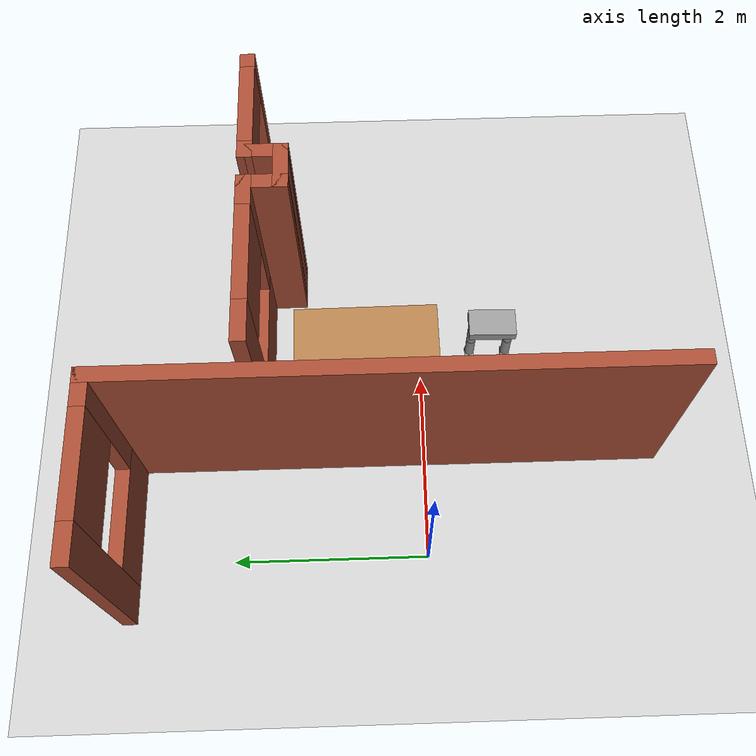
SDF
<sdf version="1.6">
 <world name="default">
  <model name="ground_plane">
   <static>1</static>
   <link name="link">
    <collision name="collision">
     <geometry><plane><normal>0 0 1</normal><size>100 100</size></plane></geometry>
     <surface><friction><ode><mu>100</mu><mu2>50</mu2></ode></friction></surface>
    </collision>
    <visual name="visual">
     <cast_shadows>0</cast_shadows>
     <geometry><plane><normal>0 0 1</normal><size>100 100</size></plane></geometry>
     <material>
      <script><uri>file://media/materials/scripts/gazebo.material</uri><name>Gazebo/Grey</name></script>
     </material>
    </visual>
   </link>
  </model>
  <model name="table_5">
   <static>1</static>
   <link name="link">
    <collision name="surface">
     <pose>0 0 1 0 -0 0</pose>
     <geometry><box><size>1.5 0.8 0.03</size></box></geometry>
     <surface><friction><ode><mu>0.6</mu><mu2>0.6</mu2></ode></friction></surface>
    </collision>
    <visual name="visual1">
     <pose>0 0 1 0 -0 0</pose>
     <geometry><box><size>1.5 0.8 0.03</size></box></geometry>
     <material>
      <script><uri>file://media/materials/scripts/gazebo.material</uri><name>Gazebo/Wood</name></script>
     </material>
    </visual>
    <collision name="front_left_leg">
     <pose>0.68 0.38 0.5 0 -0 0</pose>
     <geometry><cylinder><radius>0.02</radius><length>1</length></cylinder></geometry>
    </collision>
    <visual name="front_left_leg">
     <pose>0.68 0.38 0.5 0 -0 0</pose>
     <geometry><cylinder><radius>0.02</radius><length>1</length></cylinder></geometry>
     <material>
      <script><uri>file://media/materials/scripts/gazebo.material</uri><name>Gazebo/Grey</name></script>
     </material>
    </visual>
    <collision name="front_right_leg">
     <pose>0.68 -0.38 0.5 0 -0 0</pose>
     <geometry><cylinder><radius>0.02</radius><length>1</length></cylinder></geometry>
    </collision>
    <visual name="front_right_leg">
     <pose>0.68 -0.38 0.5 0 -0 0</pose>
     <geometry><cylinder><radius>0.02</radius><length>1</length></cylinder></geometry>
     <material>
      <script><uri>file://media/materials/scripts/gazebo.material</uri><name>Gazebo/Grey</name></script>
     </material>
    </visual>
    <collision name="back_right_leg">
     <pose>-0.68 -0.38 0.5 0 -0 0</pose>
     <geometry><cylinder><radius>0.02</radius><length>1</length></cylinder></geometry>
    </collision>
    <visual name="back_right_leg">
     <pose>-0.68 -0.38 0.5 0 -0 0</pose>
     <geometry><cylinder><radius>0.02</radius><length>1</length></cylinder></geometry>
     <material>
      <script><uri>file://media/materials/scripts/gazebo.material</uri><name>Gazebo/Grey</name></script>
     </material>
    </visual>
    <collision name="back_left_leg">
     <pose>-0.68 0.38 0.5 0 -0 0</pose>
     <geometry><cylinder><radius>0.02</radius><length>1</length></cylinder></geometry>
    </collision>
    <visual name="back_left_leg">
     <pose>-0.68 0.38 0.5 0 -0 0</pose>
     <geometry><cylinder><radius>0.02</radius><length>1</length></cylinder></geometry>
     <material>
      <script><uri>file://media/materials/scripts/gazebo.material</uri><name>Gazebo/Grey</name></script>
     </material>
    </visual>
   </link>
   <pose>2.01572 0.578498 0 0 0 -1.56109</pose>
  </model>
  <model name="Humanoid_0">
   <link name="link_0">
    <pose>0.336877 -1.8722 0.949715 -0 -0 -0</pose>
    <inertial>
     <mass>1</mass>
     <inertia>
      <ixx>0.166667</ixx>
      <ixy>0</ixy>
      <ixz>0</ixz>
      <iyy>0.166667</iyy>
      <iyz>0</iyz>
      <izz>0.166667</izz>
     </inertia>
    </inertial>
    <visual name="visual">
     <geometry><box><size>0.3 0.5 0.12</size></box></geometry>
     <material>
      <lighting>1</lighting>
      <script><uri>file://media/materials/scripts/gazebo.material</uri><name>Gazebo/Grey</name></script>
      <shader type="pixel"><normal_map>__default__</normal_map></shader>
      <ambient>0.3 0.3 0.3 1</ambient>
      <diffuse>0.7 0.7 0.7 1</diffuse>
      <specular>0.01 0.01 0.01 1</specular>
      <emissive>0 0 0 1</emissive>
     </material>
    </visual>
    <collision name="collision">
     <geometry><box><size>0.3 0.5 0.1</size></box></geometry>
     <surface>
      <friction>
       <ode><mu>1</mu><mu2>1</mu2><fdir1>0 0 0</fdir1><slip1>0</slip1><slip2>0</slip2></ode>
       <torsional>
        <coefficient>1</coefficient>
        <patch_radius>0</patch_radius>
        <surface_radius>0</surface_radius>
        <use_patch_radius>1</use_patch_radius>
        <ode><slip>0</slip></ode>
       </torsional>
      </friction>
      <bounce><restitution_coefficient>0</restitution_coefficient><threshold>1e+06</threshold></bounce>
      <contact>
       <collide_without_contact>0</collide_without_contact>
       <collide_without_contact_bitmask>1</collide_without_contact_bitmask>
       <collide_bitmask>1</collide_bitmask>
       <ode>
        <soft_cfm>0</soft_cfm>
        <soft_erp>0.2</soft_erp>
        <kp>1e+13</kp>
        <kd>1</kd>
        <max_vel>0.01</max_vel>
        <min_depth>0</min_depth>
       </ode>
       <bullet>
        <split_impulse>1</split_impulse>
        <split_impulse_penetration_threshold>-0.01</split_impulse_penetration_threshold>
        <soft_cfm>0</soft_cfm>
        <soft_erp>0.2</soft_erp>
        <kp>1e+13</kp>
        <kd>1</kd>
       </bullet>
      </contact>
     </surface>
    </collision>
   </link>
   <link name="link_1">
    <pose>0.33738 -2.07145 0.439715 -0 -0 -0</pose>
    <inertial>
     <mass>1</mass>
     <inertia><ixx>0.145833</ixx><ixy>0</ixy><ixz>0</ixz><iyy>0.145833</iyy><iyz>0</iyz><izz>0.125</izz></inertia>
    </inertial>
    <visual name="visual">
     <geometry><cylinder><radius>0.05</radius><length>0.3</length></cylinder></geometry>
     <material>
      <lighting>1</lighting>
      <script><uri>file://media/materials/scripts/gazebo.material</uri><name>Gazebo/Grey</name></script>
      <shader type="pixel"><normal_map>__default__</normal_map></shader>
      <ambient>0.3 0.3 0.3 1</ambient>
      <diffuse>0.7 0.7 0.7 1</diffuse>
      <specular>0.01 0.01 0.01 1</specular>
      <emissive>0 0 0 1</emissive>
     </material>
    </visual>
    <collision name="collision">
     <geometry><cylinder><radius>0.05</radius><length>0.3</length></cylinder></geometry>
     <surface>
      <friction>
       <ode><mu>1</mu><mu2>1</mu2><fdir1>0 0 0</fdir1><slip1>0</slip1><slip2>0</slip2></ode>
       <torsional>
        <coefficient>1</coefficient>
        <patch_radius>0</patch_radius>
        <surface_radius>0</surface_radius>
        <use_patch_radius>1</use_patch_radius>
        <ode><slip>0</slip></ode>
       </torsional>
      </friction>
      <bounce><restitution_coefficient>0</restitution_coefficient><threshold>1e+06</threshold></bounce>
      <contact>
       <collide_without_contact>0</collide_without_contact>
       <collide_without_contact_bitmask>1</collide_without_contact_bitmask>
       <collide_bitmask>1</collide_bitmask>
       <ode>
        <soft_cfm>0</soft_cfm>
        <soft_erp>0.2</soft_erp>
        <kp>1e+13</kp>
        <kd>1</kd>
        <max_vel>0.01</max_vel>
        <min_depth>0</min_depth>
       </ode>
       <bullet>
        <split_impulse>1</split_impulse>
        <split_impulse_penetration_threshold>-0.01</split_impulse_penetration_threshold>
        <soft_cfm>0</soft_cfm>
        <soft_erp>0.2</soft_erp>
        <kp>1e+13</kp>
        <kd>1</kd>
       </bullet>
      </contact>
     </surface>
    </collision>
   </link>
   <link name="link_1_clone">
    <pose>0.336877 -2.0722 0.739716 -0 -0 -0</pose>
    <inertial>
     <mass>1</mass>
     <inertia><ixx>0.145833</ixx><ixy>0</ixy><ixz>0</ixz><iyy>0.145833</iyy><iyz>0</iyz><izz>0.125</izz></inertia>
    </inertial>
    <visual name="visual">
     <geometry><cylinder><radius>0.05</radius><length>0.3</length></cylinder></geometry>
     <material>
      <lighting>1</lighting>
      <script><uri>file://media/materials/scripts/gazebo.material</uri><name>Gazebo/Grey</name></script>
      <shader type="pixel"><normal_map>__default__</normal_map></shader>
      <ambient>0.3 0.3 0.3 1</ambient>
      <diffuse>0.7 0.7 0.7 1</diffuse>
      <specular>0.01 0.01 0.01 1</specular>
      <emissive>0 0 0 1</emissive>
     </material>
    </visual>
    <collision name="collision">
     <geometry><cylinder><radius>0.05</radius><length>0.3</length></cylinder></geometry>
     <surface>
      <friction>
       <ode><mu>1</mu><mu2>1</mu2><fdir1>0 0 0</fdir1><slip1>0</slip1><slip2>0</slip2></ode>
       <torsional>
        <coefficient>1</coefficient>
        <patch_radius>0</patch_radius>
        <surface_radius>0</surface_radius>
        <use_patch_radius>1</use_patch_radius>
        <ode><slip>0</slip></ode>
       </torsional>
      </friction>
      <bounce><restitution_coefficient>0</restitution_coefficient><threshold>1e+06</threshold></bounce>
      <contact>
       <collide_without_contact>0</collide_without_contact>
       <collide_without_contact_bitmask>1</collide_without_contact_bitmask>
       <collide_bitmask>1</collide_bitmask>
       <ode>
        <soft_cfm>0</soft_cfm>
        <soft_erp>0.2</soft_erp>
        <kp>1e+13</kp>
        <kd>1</kd>
        <max_vel>0.01</max_vel>
        <min_depth>0</min_depth>
       </ode>
       <bullet>
        <split_impulse>1</split_impulse>
        <split_impulse_penetration_threshold>-0.01</split_impulse_penetration_threshold>
        <soft_cfm>0</soft_cfm>
        <soft_erp>0.2</soft_erp>
        <kp>1e+13</kp>
        <kd>1</kd>
       </bullet>
      </contact>
     </surface>
    </collision>
   </link>
   <link name="link_1_clone_0">
    <pose>0.336877 -1.6722 0.739716 -0 -0 -0</pose>
    <inertial>
     <mass>1</mass>
     <inertia><ixx>0.145833</ixx><ixy>0</ixy><ixz>0</ixz><iyy>0.145833</iyy><iyz>0</iyz><izz>0.125</izz></inertia>
    </inertial>
    <visual name="visual">
     <geometry><cylinder><radius>0.05</radius><length>0.3</length></cylinder></geometry>
     <material>
      <lighting>1</lighting>
      <script><uri>file://media/materials/scripts/gazebo.material</uri><name>Gazebo/Grey</name></script>
      <shader type="pixel"><normal_map>__default__</normal_map></shader>
      <ambient>0.3 0.3 0.3 1</ambient>
      <diffuse>0.7 0.7 0.7 1</diffuse>
      <specular>0.01 0.01 0.01 1</specular>
      <emissive>0 0 0 1</emissive>
     </material>
    </visual>
    <collision name="collision">
     <geometry><cylinder><radius>0.05</radius><length>0.3</length></cylinder></geometry>
     <surface>
      <friction>
       <ode><mu>1</mu><mu2>1</mu2><fdir1>0 0 0</fdir1><slip1>0</slip1><slip2>0</slip2></ode>
       <torsional>
        <coefficient>1</coefficient>
        <patch_radius>0</patch_radius>
        <surface_radius>0</surface_radius>
        <use_patch_radius>1</use_patch_radius>
        <ode><slip>0</slip></ode>
       </torsional>
      </friction>
      <bounce><restitution_coefficient>0</restitution_coefficient><threshold>1e+06</threshold></bounce>
      <contact>
       <collide_without_contact>0</collide_without_contact>
       <collide_without_contact_bitmask>1</collide_without_contact_bitmask>
       <collide_bitmask>1</collide_bitmask>
       <ode>
        <soft_cfm>0</soft_cfm>
        <soft_erp>0.2</soft_erp>
        <kp>1e+13</kp>
        <kd>1</kd>
        <max_vel>0.01</max_vel>
        <min_depth>0</min_depth>
       </ode>
       <bullet>
        <split_impulse>1</split_impulse>
        <split_impulse_penetration_threshold>-0.01</split_impulse_penetration_threshold>
        <soft_cfm>0</soft_cfm>
        <soft_erp>0.2</soft_erp>
        <kp>1e+13</kp>
        <kd>1</kd>
       </bullet>
      </contact>
     </surface>
    </collision>
   </link>
   <link name="link_1_clone_1">
    <pose>0.336877 -1.6722 0.439715 -0 -0 -0</pose>
    <inertial>
     <mass>1</mass>
     <inertia><ixx>0.145833</ixx><ixy>0</ixy><ixz>0</ixz><iyy>0.145833</iyy><iyz>0</iyz><izz>0.125</izz></inertia>
    </inertial>
    <visual name="visual">
     <geometry><cylinder><radius>0.05</radius><length>0.3</length></cylinder></geometry>
     <material>
      <lighting>1</lighting>
      <script><uri>file://media/materials/scripts/gazebo.material</uri><name>Gazebo/Grey</name></script>
      <shader type="pixel"><normal_map>__default__</normal_map></shader>
      <ambient>0.3 0.3 0.3 1</ambient>
      <diffuse>0.7 0.7 0.7 1</diffuse>
      <specular>0.01 0.01 0.01 1</specular>
      <emissive>0 0 0 1</emissive>
     </material>
    </visual>
    <collision name="collision">
     <geometry><cylinder><radius>0.05</radius><length>0.3</length></cylinder></geometry>
     <surface>
      <friction>
       <ode><mu>1</mu><mu2>1</mu2><fdir1>0 0 0</fdir1><slip1>0</slip1><slip2>0</slip2></ode>
       <torsional>
        <coefficient>1</coefficient>
        <patch_radius>0</patch_radius>
        <surface_radius>0</surface_radius>
        <use_patch_radius>1</use_patch_radius>
        <ode><slip>0</slip></ode>
       </torsional>
      </friction>
      <bounce><restitution_coefficient>0</restitution_coefficient><threshold>1e+06</threshold></bounce>
      <contact>
       <collide_without_contact>0</collide_without_contact>
       <collide_without_contact_bitmask>1</collide_without_contact_bitmask>
       <collide_bitmask>1</collide_bitmask>
       <ode>
        <soft_cfm>0</soft_cfm>
        <soft_erp>0.2</soft_erp>
        <kp>1e+13</kp>
        <kd>1</kd>
        <max_vel>0.01</max_vel>
        <min_depth>0</min_depth>
       </ode>
       <bullet>
        <split_impulse>1</split_impulse>
        <split_impulse_penetration_threshold>-0.01</split_impulse_penetration_threshold>
        <soft_cfm>0</soft_cfm>
        <soft_erp>0.2</soft_erp>
        <kp>1e+13</kp>
        <kd>1</kd>
       </bullet>
      </contact>
     </surface>
    </collision>
   </link>
   <link name="link_2">
    <pose>0.284566 -2.06785 0.266379 -0 -0 -0</pose>
    <inertial>
     <mass>1</mass>
     <inertia>
      <ixx>0.166667</ixx>
      <ixy>0</ixy>
      <ixz>0</ixz>
      <iyy>0.166667</iyy>
      <iyz>0</iyz>
      <izz>0.166667</izz>
     </inertia>
    </inertial>
    <visual name="visual">
     <geometry><box><size>0.2 0.1 0.05</size></box></geometry>
     <material>
      <lighting>1</lighting>
      <script><uri>file://media/materials/scripts/gazebo.material</uri><name>Gazebo/Grey</name></script>
      <shader type="pixel"><normal_map>__default__</normal_map></shader>
      <ambient>0.3 0.3 0.3 1</ambient>
      <diffuse>0.7 0.7 0.7 1</diffuse>
      <specular>0.01 0.01 0.01 1</specular>
      <emissive>0 0 0 1</emissive>
     </material>
    </visual>
    <collision name="collision">
     <geometry><box><size>0.2 0.1 0.05</size></box></geometry>
     <surface>
      <friction>
       <ode><mu>1</mu><mu2>1</mu2><fdir1>0 0 0</fdir1><slip1>0</slip1><slip2>0</slip2></ode>
       <torsional>
        <coefficient>1</coefficient>
        <patch_radius>0</patch_radius>
        <surface_radius>0</surface_radius>
        <use_patch_radius>1</use_patch_radius>
        <ode><slip>0</slip></ode>
       </torsional>
      </friction>
      <bounce><restitution_coefficient>0</restitution_coefficient><threshold>1e+06</threshold></bounce>
      <contact>
       <collide_without_contact>0</collide_without_contact>
       <collide_without_contact_bitmask>1</collide_without_contact_bitmask>
       <collide_bitmask>1</collide_bitmask>
       <ode>
        <soft_cfm>0</soft_cfm>
        <soft_erp>0.2</soft_erp>
        <kp>1e+13</kp>
        <kd>1</kd>
        <max_vel>0.01</max_vel>
        <min_depth>0</min_depth>
       </ode>
       <bullet>
        <split_impulse>1</split_impulse>
        <split_impulse_penetration_threshold>-0.01</split_impulse_penetration_threshold>
        <soft_cfm>0</soft_cfm>
        <soft_erp>0.2</soft_erp>
        <kp>1e+13</kp>
        <kd>1</kd>
       </bullet>
      </contact>
     </surface>
    </collision>
   </link>
   <link name="link_2_clone">
    <pose>0.284446 -1.67061 0.264715 -0 -0 -0</pose>
    <inertial>
     <mass>1</mass>
     <inertia>
      <ixx>0.166667</ixx>
      <ixy>0</ixy>
      <ixz>0</ixz>
      <iyy>0.166667</iyy>
      <iyz>0</iyz>
      <izz>0.166667</izz>
     </inertia>
    </inertial>
    <visual name="visual">
     <geometry><box><size>0.2 0.1 0.05</size></box></geometry>
     <material>
      <lighting>1</lighting>
      <script><uri>file://media/materials/scripts/gazebo.material</uri><name>Gazebo/Grey</name></script>
      <shader type="pixel"><normal_map>__default__</normal_map></shader>
      <ambient>0.3 0.3 0.3 1</ambient>
      <diffuse>0.7 0.7 0.7 1</diffuse>
      <specular>0.01 0.01 0.01 1</specular>
      <emissive>0 0 0 1</emissive>
     </material>
    </visual>
    <collision name="collision">
     <geometry><box><size>0.2 0.1 0.05</size></box></geometry>
     <surface>
      <friction>
       <ode><mu>1</mu><mu2>1</mu2><fdir1>0 0 0</fdir1><slip1>0</slip1><slip2>0</slip2></ode>
       <torsional>
        <coefficient>1</coefficient>
        <patch_radius>0</patch_radius>
        <surface_radius>0</surface_radius>
        <use_patch_radius>1</use_patch_radius>
        <ode><slip>0</slip></ode>
       </torsional>
      </friction>
      <bounce><restitution_coefficient>0</restitution_coefficient><threshold>1e+06</threshold></bounce>
      <contact>
       <collide_without_contact>0</collide_without_contact>
       <collide_without_contact_bitmask>1</collide_without_contact_bitmask>
       <collide_bitmask>1</collide_bitmask>
       <ode>
        <soft_cfm>0</soft_cfm>
        <soft_erp>0.2</soft_erp>
        <kp>1e+13</kp>
        <kd>1</kd>
        <max_vel>0.01</max_vel>
        <min_depth>0</min_depth>
       </ode>
       <bullet>
        <split_impulse>1</split_impulse>
        <split_impulse_penetration_threshold>-0.01</split_impulse_penetration_threshold>
        <soft_cfm>0</soft_cfm>
        <soft_erp>0.2</soft_erp>
        <kp>1e+13</kp>
        <kd>1</kd>
       </bullet>
      </contact>
     </surface>
    </collision>
   </link>
   <joint name="link_0_JOINT_0" type="fixed">
    <parent>link_0</parent>
    <child>link_1_clone</child>
    <physics>
     <ode><limit><cfm>0</cfm><erp>0.2</erp></limit><suspension><cfm>0</cfm><erp>0.2</erp></suspension></ode>
    </physics>
   </joint>
   <joint name="link_0_JOINT_1" type="fixed">
    <parent>link_0</parent>
    <child>link_1_clone_0</child>
    <physics>
     <ode><limit><cfm>0</cfm><erp>0.2</erp></limit><suspension><cfm>0</cfm><erp>0.2</erp></suspension></ode>
    </physics>
   </joint>
   <joint name="link_1_JOINT_5" type="fixed">
    <parent>link_1</parent>
    <child>link_2</child>
    <physics>
     <ode><limit><cfm>0</cfm><erp>0.2</erp></limit><suspension><cfm>0</cfm><erp>0.2</erp></suspension></ode>
    </physics>
   </joint>
   <joint name="link_1_clone_0_JOINT_2" type="fixed">
    <parent>link_1_clone_0</parent>
    <child>link_1_clone_1</child>
    <physics>
     <ode><limit><cfm>0</cfm><erp>0.2</erp></limit><suspension><cfm>0</cfm><erp>0.2</erp></suspension></ode>
    </physics>
   </joint>
   <joint name="link_1_clone_1_JOINT_4" type="fixed">
    <parent>link_1_clone_1</parent>
    <child>link_2_clone</child>
    <physics>
     <ode><limit><cfm>0</cfm><erp>0.2</erp></limit><suspension><cfm>0</cfm><erp>0.2</erp></suspension></ode>
    </physics>
   </joint>
   <joint name="link_1_clone_JOINT_3" type="revolute">
    <parent>link_1_clone</parent>
    <child>link_1</child>
    <axis>
     <xyz>1 0 0</xyz>
     <use_parent_model_frame>0</use_parent_model_frame>
     <limit>
      <lower>-1.79769e+308</lower>
      <upper>1.79769e+308</upper>
      <effort>-1</effort>
      <velocity>-1</velocity>
     </limit>
     <dynamics>
      <spring_reference>0</spring_reference>
      <spring_stiffness>0</spring_stiffness>
      <damping>0</damping>
      <friction>0</friction>
     </dynamics>
    </axis>
    <physics>
     <ode><limit><cfm>0</cfm><erp>0.2</erp></limit><suspension><cfm>0</cfm><erp>0.2</erp></suspension></ode>
    </physics>
   </joint>
   <static>0</static>
   <pose>2.00455 1.11455 -0.231565 0.004737 4e-06 -0.012397</pose>
  </model>
  <model name="Home">
   <link name="Wall_12">
    <pose>1.94922 2.54128 0 0 -0 0</pose>
    <visual name="Wall_12_Visual_0">
     <pose>-0.664426 0 1.25 0 -0 0</pose>
     <geometry><box><size>0.421149 0.15 2.5</size></box></geometry>
     <material>
      <script><uri>file://media/materials/scripts/gazebo.material</uri><name>Gazebo/Bricks</name></script>
      <ambient>1 1 1 1</ambient>
     </material>
     <meta><layer>0</layer></meta>
    </visual>
    <visual name="Wall_12_Visual_1">
     <pose>0.210574 0 0.4 0 -0 0</pose>
     <geometry><box><size>1.32885 0.15 0.8</size></box></geometry>
     <material>
      <script><uri>file://media/materials/scripts/gazebo.material</uri><name>Gazebo/Bricks</name></script>
      <ambient>1 1 1 1</ambient>
     </material>
     <meta><layer>0</layer></meta>
    </visual>
    <visual name="Wall_12_Visual_2">
     <pose>0.710574 0 1.65 0 -0 0</pose>
     <geometry><box><size>0.328851 0.15 1.7</size></box></geometry>
     <material>
      <script><uri>file://media/materials/scripts/gazebo.material</uri><name>Gazebo/Bricks</name></script>
      <ambient>1 1 1 1</ambient>
     </material>
     <meta><layer>0</layer></meta>
    </visual>
    <visual name="Wall_12_Visual_3">
     <pose>0.046149 0 2.05 0 -0 0</pose>
     <geometry><box><size>1 0.15 0.9</size></box></geometry>
     <material>
      <script><uri>file://media/materials/scripts/gazebo.material</uri><name>Gazebo/Bricks</name></script>
      <ambient>1 1 1 1</ambient>
     </material>
     <meta><layer>0</layer></meta>
    </visual>
    <collision name="Wall_12_Collision_0">
     <pose>-0.664426 0 1.25 0 -0 0</pose>
     <geometry><box><size>0.421149 0.15 2.5</size></box></geometry>
     <surface>
      <friction>
       <ode><mu>1</mu><mu2>1</mu2><fdir1>0 0 0</fdir1><slip1>0</slip1><slip2>0</slip2></ode>
       <torsional>
        <coefficient>1</coefficient>
        <patch_radius>0</patch_radius>
        <surface_radius>0</surface_radius>
        <use_patch_radius>1</use_patch_radius>
        <ode><slip>0</slip></ode>
       </torsional>
      </friction>
      <bounce><restitution_coefficient>0</restitution_coefficient><threshold>1e+06</threshold></bounce>
      <contact>
       <collide_without_contact>0</collide_without_contact>
       <collide_without_contact_bitmask>1</collide_without_contact_bitmask>
       <collide_bitmask>1</collide_bitmask>
       <ode>
        <soft_cfm>0</soft_cfm>
        <soft_erp>0.2</soft_erp>
        <kp>1e+13</kp>
        <kd>1</kd>
        <max_vel>0.01</max_vel>
        <min_depth>0</min_depth>
       </ode>
       <bullet>
        <split_impulse>1</split_impulse>
        <split_impulse_penetration_threshold>-0.01</split_impulse_penetration_threshold>
        <soft_cfm>0</soft_cfm>
        <soft_erp>0.2</soft_erp>
        <kp>1e+13</kp>
        <kd>1</kd>
       </bullet>
      </contact>
     </surface>
    </collision>
    <collision name="Wall_12_Collision_1">
     <pose>0.210574 0 0.4 0 -0 0</pose>
     <geometry><box><size>1.32885 0.15 0.8</size></box></geometry>
     <surface>
      <friction>
       <ode><mu>1</mu><mu2>1</mu2><fdir1>0 0 0</fdir1><slip1>0</slip1><slip2>0</slip2></ode>
       <torsional>
        <coefficient>1</coefficient>
        <patch_radius>0</patch_radius>
        <surface_radius>0</surface_radius>
        <use_patch_radius>1</use_patch_radius>
        <ode><slip>0</slip></ode>
       </torsional>
      </friction>
      <bounce><restitution_coefficient>0</restitution_coefficient><threshold>1e+06</threshold></bounce>
      <contact>
       <collide_without_contact>0</collide_without_contact>
       <collide_without_contact_bitmask>1</collide_without_contact_bitmask>
       <collide_bitmask>1</collide_bitmask>
       <ode>
        <soft_cfm>0</soft_cfm>
        <soft_erp>0.2</soft_erp>
        <kp>1e+13</kp>
        <kd>1</kd>
        <max_vel>0.01</max_vel>
        <min_depth>0</min_depth>
       </ode>
       <bullet>
        <split_impulse>1</split_impulse>
        <split_impulse_penetration_threshold>-0.01</split_impulse_penetration_threshold>
        <soft_cfm>0</soft_cfm>
        <soft_erp>0.2</soft_erp>
        <kp>1e+13</kp>
        <kd>1</kd>
       </bullet>
      </contact>
     </surface>
    </collision>
    <collision name="Wall_12_Collision_2">
     <pose>0.710574 0 1.65 0 -0 0</pose>
     <geometry><box><size>0.328851 0.15 1.7</size></box></geometry>
     <surface>
      <friction>
       <ode><mu>1</mu><mu2>1</mu2><fdir1>0 0 0</fdir1><slip1>0</slip1><slip2>0</slip2></ode>
       <torsional>
        <coefficient>1</coefficient>
        <patch_radius>0</patch_radius>
        <surface_radius>0</surface_radius>
        <use_patch_radius>1</use_patch_radius>
        <ode><slip>0</slip></ode>
       </torsional>
      </friction>
      <bounce><restitution_coefficient>0</restitution_coefficient><threshold>1e+06</threshold></bounce>
      <contact>
       <collide_without_contact>0</collide_without_contact>
       <collide_without_contact_bitmask>1</collide_without_contact_bitmask>
       <collide_bitmask>1</collide_bitmask>
       <ode>
        <soft_cfm>0</soft_cfm>
        <soft_erp>0.2</soft_erp>
        <kp>1e+13</kp>
        <kd>1</kd>
        <max_vel>0.01</max_vel>
        <min_depth>0</min_depth>
       </ode>
       <bullet>
        <split_impulse>1</split_impulse>
        <split_impulse_penetration_threshold>-0.01</split_impulse_penetration_threshold>
        <soft_cfm>0</soft_cfm>
        <soft_erp>0.2</soft_erp>
        <kp>1e+13</kp>
        <kd>1</kd>
       </bullet>
      </contact>
     </surface>
    </collision>
    <collision name="Wall_12_Collision_3">
     <pose>0.046149 0 2.05 0 -0 0</pose>
     <geometry><box><size>1 0.15 0.9</size></box></geometry>
     <surface>
      <friction>
       <ode><mu>1</mu><mu2>1</mu2><fdir1>0 0 0</fdir1><slip1>0</slip1><slip2>0</slip2></ode>
       <torsional>
        <coefficient>1</coefficient>
        <patch_radius>0</patch_radius>
        <surface_radius>0</surface_radius>
        <use_patch_radius>1</use_patch_radius>
        <ode><slip>0</slip></ode>
       </torsional>
      </friction>
      <bounce><restitution_coefficient>0</restitution_coefficient><threshold>1e+06</threshold></bounce>
      <contact>
       <collide_without_contact>0</collide_without_contact>
       <collide_without_contact_bitmask>1</collide_without_contact_bitmask>
       <collide_bitmask>1</collide_bitmask>
       <ode>
        <soft_cfm>0</soft_cfm>
        <soft_erp>0.2</soft_erp>
        <kp>1e+13</kp>
        <kd>1</kd>
        <max_vel>0.01</max_vel>
        <min_depth>0</min_depth>
       </ode>
       <bullet>
        <split_impulse>1</split_impulse>
        <split_impulse_penetration_threshold>-0.01</split_impulse_penetration_threshold>
        <soft_cfm>0</soft_cfm>
        <soft_erp>0.2</soft_erp>
        <kp>1e+13</kp>
        <kd>1</kd>
       </bullet>
      </contact>
     </surface>
    </collision>
   </link>
   <link name="Wall_13">
    <pose>2.74922 2.36628 0 0 0 -1.5708</pose>
    <visual name="Wall_13_Visual">
     <pose>0 0 1.25 0 -0 0</pose>
     <geometry><box><size>0.5 0.15 2.5</size></box></geometry>
     <material>
      <script><uri>file://media/materials/scripts/gazebo.material</uri><name>Gazebo/Bricks</name></script>
      <ambient>1 1 1 1</ambient>
     </material>
     <meta><layer>0</layer></meta>
    </visual>
    <collision name="Wall_13_Collision">
     <pose>0 0 1.25 0 -0 0</pose>
     <geometry><box><size>0.5 0.15 2.5</size></box></geometry>
     <surface>
      <friction>
       <ode><mu>1</mu><mu2>1</mu2><fdir1>0 0 0</fdir1><slip1>0</slip1><slip2>0</slip2></ode>
       <torsional>
        <coefficient>1</coefficient>
        <patch_radius>0</patch_radius>
        <surface_radius>0</surface_radius>
        <use_patch_radius>1</use_patch_radius>
        <ode><slip>0</slip></ode>
       </torsional>
      </friction>
      <bounce><restitution_coefficient>0</restitution_coefficient><threshold>1e+06</threshold></bounce>
      <contact>
       <collide_without_contact>0</collide_without_contact>
       <collide_without_contact_bitmask>1</collide_without_contact_bitmask>
       <collide_bitmask>1</collide_bitmask>
       <ode>
        <soft_cfm>0</soft_cfm>
        <soft_erp>0.2</soft_erp>
        <kp>1e+13</kp>
        <kd>1</kd>
        <max_vel>0.01</max_vel>
        <min_depth>0</min_depth>
       </ode>
       <bullet>
        <split_impulse>1</split_impulse>
        <split_impulse_penetration_threshold>-0.01</split_impulse_penetration_threshold>
        <soft_cfm>0</soft_cfm>
        <soft_erp>0.2</soft_erp>
        <kp>1e+13</kp>
        <kd>1</kd>
       </bullet>
      </contact>
     </surface>
    </collision>
   </link>
   <link name="Wall_14">
    <pose>2.92422 2.19128 0 0 -0 0</pose>
    <visual name="Wall_14_Visual">
     <pose>0 0 1.25 0 -0 0</pose>
     <geometry><box><size>0.5 0.15 2.5</size></box></geometry>
     <material>
      <script><uri>file://media/materials/scripts/gazebo.material</uri><name>Gazebo/Bricks</name></script>
      <ambient>1 1 1 1</ambient>
     </material>
     <meta><layer>0</layer></meta>
    </visual>
    <collision name="Wall_14_Collision">
     <pose>0 0 1.25 0 -0 0</pose>
     <geometry><box><size>0.5 0.15 2.5</size></box></geometry>
     <surface>
      <friction>
       <ode><mu>1</mu><mu2>1</mu2><fdir1>0 0 0</fdir1><slip1>0</slip1><slip2>0</slip2></ode>
       <torsional>
        <coefficient>1</coefficient>
        <patch_radius>0</patch_radius>
        <surface_radius>0</surface_radius>
        <use_patch_radius>1</use_patch_radius>
        <ode><slip>0</slip></ode>
       </torsional>
      </friction>
      <bounce><restitution_coefficient>0</restitution_coefficient><threshold>1e+06</threshold></bounce>
      <contact>
       <collide_without_contact>0</collide_without_contact>
       <collide_without_contact_bitmask>1</collide_without_contact_bitmask>
       <collide_bitmask>1</collide_bitmask>
       <ode>
        <soft_cfm>0</soft_cfm>
        <soft_erp>0.2</soft_erp>
        <kp>1e+13</kp>
        <kd>1</kd>
        <max_vel>0.01</max_vel>
        <min_depth>0</min_depth>
       </ode>
       <bullet>
        <split_impulse>1</split_impulse>
        <split_impulse_penetration_threshold>-0.01</split_impulse_penetration_threshold>
        <soft_cfm>0</soft_cfm>
        <soft_erp>0.2</soft_erp>
        <kp>1e+13</kp>
        <kd>1</kd>
       </bullet>
      </contact>
     </surface>
    </collision>
   </link>
   <link name="Wall_15">
    <pose>3.09922 2.36628 0 0 -0 1.5708</pose>
    <visual name="Wall_15_Visual">
     <pose>0 0 1.25 0 -0 0</pose>
     <geometry><box><size>0.5 0.15 2.5</size></box></geometry>
     <material>
      <script><uri>file://media/materials/scripts/gazebo.material</uri><name>Gazebo/Bricks</name></script>
      <ambient>1 1 1 1</ambient>
     </material>
     <meta><layer>0</layer></meta>
    </visual>
    <collision name="Wall_15_Collision">
     <pose>0 0 1.25 0 -0 0</pose>
     <geometry><box><size>0.5 0.15 2.5</size></box></geometry>
     <surface>
      <friction>
       <ode><mu>1</mu><mu2>1</mu2><fdir1>0 0 0</fdir1><slip1>0</slip1><slip2>0</slip2></ode>
       <torsional>
        <coefficient>1</coefficient>
        <patch_radius>0</patch_radius>
        <surface_radius>0</surface_radius>
        <use_patch_radius>1</use_patch_radius>
        <ode><slip>0</slip></ode>
       </torsional>
      </friction>
      <bounce><restitution_coefficient>0</restitution_coefficient><threshold>1e+06</threshold></bounce>
      <contact>
       <collide_without_contact>0</collide_without_contact>
       <collide_without_contact_bitmask>1</collide_without_contact_bitmask>
       <collide_bitmask>1</collide_bitmask>
       <ode>
        <soft_cfm>0</soft_cfm>
        <soft_erp>0.2</soft_erp>
        <kp>1e+13</kp>
        <kd>1</kd>
        <max_vel>0.01</max_vel>
        <min_depth>0</min_depth>
       </ode>
       <bullet>
        <split_impulse>1</split_impulse>
        <split_impulse_penetration_threshold>-0.01</split_impulse_penetration_threshold>
        <soft_cfm>0</soft_cfm>
        <soft_erp>0.2</soft_erp>
        <kp>1e+13</kp>
        <kd>1</kd>
       </bullet>
      </contact>
     </surface>
    </collision>
   </link>
   <link name="Wall_16">
    <pose>3.64922 2.54128 0 0 -0 0</pose>
    <visual name="Wall_16_Visual_0">
     <pose>-0.529713 0 1.25 0 -0 0</pose>
     <geometry><box><size>0.190575 0.15 2.5</size></box></geometry>
     <material>
      <script><uri>file://media/materials/scripts/gazebo.material</uri><name>Gazebo/Bricks</name></script>
      <ambient>1 1 1 1</ambient>
     </material>
     <meta><layer>0</layer></meta>
    </visual>
    <visual name="Wall_16_Visual_1">
     <pose>0.545287 0 1.25 0 -0 0</pose>
     <geometry><box><size>0.159425 0.15 2.5</size></box></geometry>
     <material>
      <script><uri>file://media/materials/scripts/gazebo.material</uri><name>Gazebo/Bricks</name></script>
      <ambient>1 1 1 1</ambient>
     </material>
     <meta><layer>0</layer></meta>
    </visual>
    <visual name="Wall_16_Visual_2">
     <pose>0.015575 0 2.25 0 -0 0</pose>
     <geometry><box><size>0.9 0.15 0.5</size></box></geometry>
     <material>
      <script><uri>file://media/materials/scripts/gazebo.material</uri><name>Gazebo/Bricks</name></script>
      <ambient>1 1 1 1</ambient>
     </material>
     <meta><layer>0</layer></meta>
    </visual>
    <collision name="Wall_16_Collision_0">
     <pose>-0.529713 0 1.25 0 -0 0</pose>
     <geometry><box><size>0.190575 0.15 2.5</size></box></geometry>
     <surface>
      <friction>
       <ode><mu>1</mu><mu2>1</mu2><fdir1>0 0 0</fdir1><slip1>0</slip1><slip2>0</slip2></ode>
       <torsional>
        <coefficient>1</coefficient>
        <patch_radius>0</patch_radius>
        <surface_radius>0</surface_radius>
        <use_patch_radius>1</use_patch_radius>
        <ode><slip>0</slip></ode>
       </torsional>
      </friction>
      <bounce><restitution_coefficient>0</restitution_coefficient><threshold>1e+06</threshold></bounce>
      <contact>
       <collide_without_contact>0</collide_without_contact>
       <collide_without_contact_bitmask>1</collide_without_contact_bitmask>
       <collide_bitmask>1</collide_bitmask>
       <ode>
        <soft_cfm>0</soft_cfm>
        <soft_erp>0.2</soft_erp>
        <kp>1e+13</kp>
        <kd>1</kd>
        <max_vel>0.01</max_vel>
        <min_depth>0</min_depth>
       </ode>
       <bullet>
        <split_impulse>1</split_impulse>
        <split_impulse_penetration_threshold>-0.01</split_impulse_penetration_threshold>
        <soft_cfm>0</soft_cfm>
        <soft_erp>0.2</soft_erp>
        <kp>1e+13</kp>
        <kd>1</kd>
       </bullet>
      </contact>
     </surface>
    </collision>
    <collision name="Wall_16_Collision_1">
     <pose>0.545287 0 1.25 0 -0 0</pose>
     <geometry><box><size>0.159425 0.15 2.5</size></box></geometry>
     <surface>
      <friction>
       <ode><mu>1</mu><mu2>1</mu2><fdir1>0 0 0</fdir1><slip1>0</slip1><slip2>0</slip2></ode>
       <torsional>
        <coefficient>1</coefficient>
        <patch_radius>0</patch_radius>
        <surface_radius>0</surface_radius>
        <use_patch_radius>1</use_patch_radius>
        <ode><slip>0</slip></ode>
       </torsional>
      </friction>
      <bounce><restitution_coefficient>0</restitution_coefficient><threshold>1e+06</threshold></bounce>
      <contact>
       <collide_without_contact>0</collide_without_contact>
       <collide_without_contact_bitmask>1</collide_without_contact_bitmask>
       <collide_bitmask>1</collide_bitmask>
       <ode>
        <soft_cfm>0</soft_cfm>
        <soft_erp>0.2</soft_erp>
        <kp>1e+13</kp>
        <kd>1</kd>
        <max_vel>0.01</max_vel>
        <min_depth>0</min_depth>
       </ode>
       <bullet>
        <split_impulse>1</split_impulse>
        <split_impulse_penetration_threshold>-0.01</split_impulse_penetration_threshold>
        <soft_cfm>0</soft_cfm>
        <soft_erp>0.2</soft_erp>
        <kp>1e+13</kp>
        <kd>1</kd>
       </bullet>
      </contact>
     </surface>
    </collision>
    <collision name="Wall_16_Collision_2">
     <pose>0.015575 0 2.25 0 -0 0</pose>
     <geometry><box><size>0.9 0.15 0.5</size></box></geometry>
     <surface>
      <friction>
       <ode><mu>1</mu><mu2>1</mu2><fdir1>0 0 0</fdir1><slip1>0</slip1><slip2>0</slip2></ode>
       <torsional>
        <coefficient>1</coefficient>
        <patch_radius>0</patch_radius>
        <surface_radius>0</surface_radius>
        <use_patch_radius>1</use_patch_radius>
        <ode><slip>0</slip></ode>
       </torsional>
      </friction>
      <bounce><restitution_coefficient>0</restitution_coefficient><threshold>1e+06</threshold></bounce>
      <contact>
       <collide_without_contact>0</collide_without_contact>
       <collide_without_contact_bitmask>1</collide_without_contact_bitmask>
       <collide_bitmask>1</collide_bitmask>
       <ode>
        <soft_cfm>0</soft_cfm>
        <soft_erp>0.2</soft_erp>
        <kp>1e+13</kp>
        <kd>1</kd>
        <max_vel>0.01</max_vel>
        <min_depth>0</min_depth>
       </ode>
       <bullet>
        <split_impulse>1</split_impulse>
        <split_impulse_penetration_threshold>-0.01</split_impulse_penetration_threshold>
        <soft_cfm>0</soft_cfm>
        <soft_erp>0.2</soft_erp>
        <kp>1e+13</kp>
        <kd>1</kd>
       </bullet>
      </contact>
     </surface>
    </collision>
   </link>
   <link name="Wall_6">
    <pose>-0.000784 3.89128 0 0 -0 0</pose>
    <visual name="Wall_6_Visual_0">
     <pose>-0.685048 0 1.25 0 -0 0</pose>
     <geometry><box><size>0.379905 0.15 2.5</size></box></geometry>
     <material>
      <script><uri>file://media/materials/scripts/gazebo.material</uri><name>Gazebo/Bricks</name></script>
      <ambient>1 1 1 1</ambient>
     </material>
     <meta><layer>0</layer></meta>
    </visual>
    <visual name="Wall_6_Visual_1">
     <pose>0.189952 0 0.4 0 -0 0</pose>
     <geometry><box><size>1.3701 0.15 0.8</size></box></geometry>
     <material>
      <script><uri>file://media/materials/scripts/gazebo.material</uri><name>Gazebo/Bricks</name></script>
      <ambient>1 1 1 1</ambient>
     </material>
     <meta><layer>0</layer></meta>
    </visual>
    <visual name="Wall_6_Visual_2">
     <pose>0.689952 0 1.65 0 -0 0</pose>
     <geometry><box><size>0.370095 0.15 1.7</size></box></geometry>
     <material>
      <script><uri>file://media/materials/scripts/gazebo.material</uri><name>Gazebo/Bricks</name></script>
      <ambient>1 1 1 1</ambient>
     </material>
     <meta><layer>0</layer></meta>
    </visual>
    <visual name="Wall_6_Visual_3">
     <pose>0.004905 0 2.05 0 -0 0</pose>
     <geometry><box><size>1 0.15 0.9</size></box></geometry>
     <material>
      <script><uri>file://media/materials/scripts/gazebo.material</uri><name>Gazebo/Bricks</name></script>
      <ambient>1 1 1 1</ambient>
     </material>
     <meta><layer>0</layer></meta>
    </visual>
    <collision name="Wall_6_Collision_0">
     <pose>-0.685048 0 1.25 0 -0 0</pose>
     <geometry><box><size>0.379905 0.15 2.5</size></box></geometry>
     <surface>
      <friction>
       <ode><mu>1</mu><mu2>1</mu2><fdir1>0 0 0</fdir1><slip1>0</slip1><slip2>0</slip2></ode>
       <torsional>
        <coefficient>1</coefficient>
        <patch_radius>0</patch_radius>
        <surface_radius>0</surface_radius>
        <use_patch_radius>1</use_patch_radius>
        <ode><slip>0</slip></ode>
       </torsional>
      </friction>
      <bounce><restitution_coefficient>0</restitution_coefficient><threshold>1e+06</threshold></bounce>
      <contact>
       <collide_without_contact>0</collide_without_contact>
       <collide_without_contact_bitmask>1</collide_without_contact_bitmask>
       <collide_bitmask>1</collide_bitmask>
       <ode>
        <soft_cfm>0</soft_cfm>
        <soft_erp>0.2</soft_erp>
        <kp>1e+13</kp>
        <kd>1</kd>
        <max_vel>0.01</max_vel>
        <min_depth>0</min_depth>
       </ode>
       <bullet>
        <split_impulse>1</split_impulse>
        <split_impulse_penetration_threshold>-0.01</split_impulse_penetration_threshold>
        <soft_cfm>0</soft_cfm>
        <soft_erp>0.2</soft_erp>
        <kp>1e+13</kp>
        <kd>1</kd>
       </bullet>
      </contact>
     </surface>
    </collision>
    <collision name="Wall_6_Collision_1">
     <pose>0.189952 0 0.4 0 -0 0</pose>
     <geometry><box><size>1.3701 0.15 0.8</size></box></geometry>
     <surface>
      <friction>
       <ode><mu>1</mu><mu2>1</mu2><fdir1>0 0 0</fdir1><slip1>0</slip1><slip2>0</slip2></ode>
       <torsional>
        <coefficient>1</coefficient>
        <patch_radius>0</patch_radius>
        <surface_radius>0</surface_radius>
        <use_patch_radius>1</use_patch_radius>
        <ode><slip>0</slip></ode>
       </torsional>
      </friction>
      <bounce><restitution_coefficient>0</restitution_coefficient><threshold>1e+06</threshold></bounce>
      <contact>
       <collide_without_contact>0</collide_without_contact>
       <collide_without_contact_bitmask>1</collide_without_contact_bitmask>
       <collide_bitmask>1</collide_bitmask>
       <ode>
        <soft_cfm>0</soft_cfm>
        <soft_erp>0.2</soft_erp>
        <kp>1e+13</kp>
        <kd>1</kd>
        <max_vel>0.01</max_vel>
        <min_depth>0</min_depth>
       </ode>
       <bullet>
        <split_impulse>1</split_impulse>
        <split_impulse_penetration_threshold>-0.01</split_impulse_penetration_threshold>
        <soft_cfm>0</soft_cfm>
        <soft_erp>0.2</soft_erp>
        <kp>1e+13</kp>
        <kd>1</kd>
       </bullet>
      </contact>
     </surface>
    </collision>
    <collision name="Wall_6_Collision_2">
     <pose>0.689952 0 1.65 0 -0 0</pose>
     <geometry><box><size>0.370095 0.15 1.7</size></box></geometry>
     <surface>
      <friction>
       <ode><mu>1</mu><mu2>1</mu2><fdir1>0 0 0</fdir1><slip1>0</slip1><slip2>0</slip2></ode>
       <torsional>
        <coefficient>1</coefficient>
        <patch_radius>0</patch_radius>
        <surface_radius>0</surface_radius>
        <use_patch_radius>1</use_patch_radius>
        <ode><slip>0</slip></ode>
       </torsional>
      </friction>
      <bounce><restitution_coefficient>0</restitution_coefficient><threshold>1e+06</threshold></bounce>
      <contact>
       <collide_without_contact>0</collide_without_contact>
       <collide_without_contact_bitmask>1</collide_without_contact_bitmask>
       <collide_bitmask>1</collide_bitmask>
       <ode>
        <soft_cfm>0</soft_cfm>
        <soft_erp>0.2</soft_erp>
        <kp>1e+13</kp>
        <kd>1</kd>
        <max_vel>0.01</max_vel>
        <min_depth>0</min_depth>
       </ode>
       <bullet>
        <split_impulse>1</split_impulse>
        <split_impulse_penetration_threshold>-0.01</split_impulse_penetration_threshold>
        <soft_cfm>0</soft_cfm>
        <soft_erp>0.2</soft_erp>
        <kp>1e+13</kp>
        <kd>1</kd>
       </bullet>
      </contact>
     </surface>
    </collision>
    <collision name="Wall_6_Collision_3">
     <pose>0.004905 0 2.05 0 -0 0</pose>
     <geometry><box><size>1 0.15 0.9</size></box></geometry>
     <surface>
      <friction>
       <ode><mu>1</mu><mu2>1</mu2><fdir1>0 0 0</fdir1><slip1>0</slip1><slip2>0</slip2></ode>
       <torsional>
        <coefficient>1</coefficient>
        <patch_radius>0</patch_radius>
        <surface_radius>0</surface_radius>
        <use_patch_radius>1</use_patch_radius>
        <ode><slip>0</slip></ode>
       </torsional>
      </friction>
      <bounce><restitution_coefficient>0</restitution_coefficient><threshold>1e+06</threshold></bounce>
      <contact>
       <collide_without_contact>0</collide_without_contact>
       <collide_without_contact_bitmask>1</collide_without_contact_bitmask>
       <collide_bitmask>1</collide_bitmask>
       <ode>
        <soft_cfm>0</soft_cfm>
        <soft_erp>0.2</soft_erp>
        <kp>1e+13</kp>
        <kd>1</kd>
        <max_vel>0.01</max_vel>
        <min_depth>0</min_depth>
       </ode>
       <bullet>
        <split_impulse>1</split_impulse>
        <split_impulse_penetration_threshold>-0.01</split_impulse_penetration_threshold>
        <soft_cfm>0</soft_cfm>
        <soft_erp>0.2</soft_erp>
        <kp>1e+13</kp>
        <kd>1</kd>
       </bullet>
      </contact>
     </surface>
    </collision>
   </link>
   <link name="Wall_7">
    <pose>0.799216 1.16628 0 0 0 -1.5708</pose>
    <visual name="Wall_7_Visual">
     <pose>0 0 1.25 0 -0 0</pose>
     <geometry><box><size>5.60031 0.15 2.5</size></box></geometry>
     <material>
      <script><uri>file://media/materials/scripts/gazebo.material</uri><name>Gazebo/Bricks</name></script>
      <ambient>1 1 1 1</ambient>
     </material>
     <meta><layer>0</layer></meta>
    </visual>
    <collision name="Wall_7_Collision">
     <pose>0 0 1.25 0 -0 0</pose>
     <geometry><box><size>5.60031 0.15 2.5</size></box></geometry>
     <surface>
      <friction>
       <ode><mu>1</mu><mu2>1</mu2><fdir1>0 0 0</fdir1><slip1>0</slip1><slip2>0</slip2></ode>
       <torsional>
        <coefficient>1</coefficient>
        <patch_radius>0</patch_radius>
        <surface_radius>0</surface_radius>
        <use_patch_radius>1</use_patch_radius>
        <ode><slip>0</slip></ode>
       </torsional>
      </friction>
      <bounce><restitution_coefficient>0</restitution_coefficient><threshold>1e+06</threshold></bounce>
      <contact>
       <collide_without_contact>0</collide_without_contact>
       <collide_without_contact_bitmask>1</collide_without_contact_bitmask>
       <collide_bitmask>1</collide_bitmask>
       <ode>
        <soft_cfm>0</soft_cfm>
        <soft_erp>0.2</soft_erp>
        <kp>1e+13</kp>
        <kd>1</kd>
        <max_vel>0.01</max_vel>
        <min_depth>0</min_depth>
       </ode>
       <bullet>
        <split_impulse>1</split_impulse>
        <split_impulse_penetration_threshold>-0.01</split_impulse_penetration_threshold>
        <soft_cfm>0</soft_cfm>
        <soft_erp>0.2</soft_erp>
        <kp>1e+13</kp>
        <kd>1</kd>
       </bullet>
      </contact>
     </surface>
    </collision>
   </link>
   <static>1</static>
   <pose>0.277352 -0.848927 0 0 -0 0</pose>
  </model>
 </world>
</sdf>
